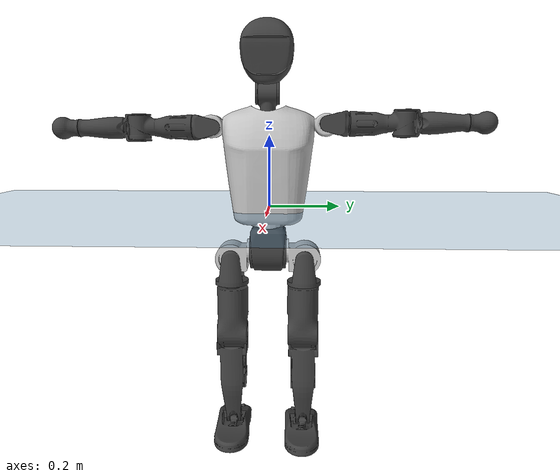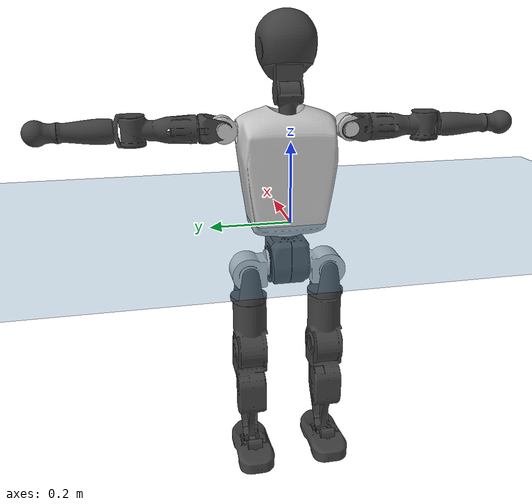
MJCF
<mujoco model="T1">
  <compiler angle="radian" assetdir="assets" balanceinertia="true" inertiafromgeom="false"/>

  <option timestep="0.005" density="1.2" viscosity="2e-05"/>

  <size nkey="1"/>

  <visual>
    <quality shadowsize="8192"/>
    <map shadowclip="0.5"/>
  </visual>

  <default>
    <default class="/">
      <joint armature="0.01" damping="0.01" frictionloss="0.1"/>
      <geom contype="0" conaffinity="0" group="1" solref="-1000 -80"/>
      <site size="0.01 0.005 0.005" group="5"/>
      <general forcelimited="true" biastype="affine" gainprm="25" biasprm="0 -25 -0.6"/>
      <default class="t1">
        <geom rgba="0.25 0.25 0.25 1"/>
        <default class="visual">
          <geom type="mesh" group="2"/>
        </default>
        <default class="collision">
          <geom group="3"/>
        </default>
        <default class="foot">
          <geom size="0.1115 0.05 0.015" type="box" condim="6" group="4" priority="1" solimp="0.015 1 0.015"/>
        </default>
        <default class="reward_collision_sphere">
          <geom group="5" rgba="1 0 0 1"/>
        </default>
      </default>
    </default>
  </default>

  <asset>
    <texture type="skybox" colorspace="auto" name="//unnamed_texture_0" builtin="gradient" rgb1="0.95 0.95 0.95" rgb2="0.95 0.95 0.95" width="100" height="600"/>
    <texture type="2d" colorspace="auto" name="texplane" builtin="checker" rgb1="0.345 0.575 0.748" rgb2="0.345 0.575 0.748" markrgb="1 1 1" width="512" height="512"/>
    <material name="MatPlane" class="/" texture="texplane" texuniform="true" texrepeat="2 2" specular="0.9"/>
    <mesh name="Trunk" class="/" file="Trunk.stl"/>
    <mesh name="H1" class="/" file="H1.stl"/>
    <mesh name="H2" class="/" file="H2.stl"/>
    <mesh name="AL1" class="/" file="AL1.stl"/>
    <mesh name="AL2" class="/" file="AL2.stl"/>
    <mesh name="AL3" class="/" file="AL3.stl"/>
    <mesh name="left_hand_link" class="/" file="left_hand_link.stl"/>
    <mesh name="AR1" class="/" file="AR1.stl"/>
    <mesh name="AR2" class="/" file="AR2.stl"/>
    <mesh name="AR3" class="/" file="AR3.stl"/>
    <mesh name="right_hand_link" class="/" file="right_hand_link.stl"/>
    <mesh name="Waist" class="/" file="Waist.stl"/>
    <mesh name="Hip_Pitch_Left" class="/" file="Hip_Pitch_Left.stl"/>
    <mesh name="Hip_Roll_Left" class="/" file="Hip_Roll_Left.stl"/>
    <mesh name="Hip_Yaw_Left" class="/" file="Hip_Yaw_Left.stl"/>
    <mesh name="Shank_Left" class="/" file="Shank_Left.stl"/>
    <mesh name="Ankle_Cross_Left" class="/" file="Ankle_Cross_Left.stl"/>
    <mesh name="left_foot_link" class="/" file="left_foot_link.stl"/>
    <mesh name="Hip_Pitch_Right" class="/" file="Hip_Pitch_Right.stl"/>
    <mesh name="Hip_Roll_Right" class="/" file="Hip_Roll_Right.stl"/>
    <mesh name="Hip_Yaw_Right" class="/" file="Hip_Yaw_Right.stl"/>
    <mesh name="Shank_Right" class="/" file="Shank_Right.stl"/>
    <mesh name="Ankle_Cross_Right" class="/" file="Ankle_Cross_Right.stl"/>
    <mesh name="right_foot_link" class="/" file="right_foot_link.stl"/>
  </asset>

  <worldbody>
    <geom name="floor" class="/" size="100 100 0.125" type="plane" group="0" material="MatPlane"/>
    <light name="toplight_shadow" class="/" pos="0 0 5" dir="0.0990148 0.0990148 -0.990148" type="directional" ambient="0.04 0.04 0.04" diffuse="0.55 0.55 0.55" specular="0.12 0.12 0.12"/>
    <light name="toplight_fill" class="/" pos="0 0 5" dir="0.0990148 0.0990148 -0.990148" type="directional" castshadow="false" ambient="0.04 0.04 0.04" diffuse="0.3 0.3 0.3" specular="0.08 0.08 0.08"/>
    <body name="trunk" childclass="t1" pos="0.0026964 0.000259683 -0.00029695" quat="1 6.27298e-05 -0.000283561 -0.000202471">
      <inertial pos="0.0381125 -0.000759879 0.106359" quat="0.999967 -0.0010181 -0.00732066 0.00348396" mass="9.10345" diaginertia="0.0157429 0.0729068 0.0650788"/>
      <joint name="//unnamed_joint_0" type="free" armature="0" damping="0" frictionloss="0"/>
      <geom name="//unnamed_geom_1" class="visual" rgba="0.76 0.76 0.76 1" mesh="Trunk"/>
      <geom name="//unnamed_geom_2" class="collision" size="0.0679999 0.0906665 0.136" pos="0.0419241 0 0.12378" type="box"/>
      <geom name="//unnamed_geom_3" class="reward_collision_sphere" size="0.104267" pos="0.0419241 0 0.10315"/>
      <geom name="//unnamed_geom_4" class="reward_collision_sphere" size="0.0136" pos="0.0419241 0.0841293 0"/>
      <geom name="//unnamed_geom_5" class="reward_collision_sphere" size="0.0136" pos="0.0419241 -0.0841293 0"/>
      <geom name="//unnamed_geom_6" class="reward_collision_sphere" size="0.0136" pos="0.0419241 0.105904 0.185671"/>
      <geom name="//unnamed_geom_7" class="reward_collision_sphere" size="0.0136" pos="0.0419241 -0.105904 0.185671"/>
      <site name="imu" pos="-0.0115725 -0.00803067 0.0140355" size="0.00906665"/>
      <camera name="track" pos="0 -1.97951 0" quat="0.707107 0.707107 0 0" mode="trackcom"/>
      <camera name="ego_camera" pos="0.0852457 0 0.433231" quat="-0.5 -0.5 0.5 0.5"/>
      <body name="H1" pos="0.0417304 -0.00240166 0.248717" quat="1 1.38365e-05 -6.80898e-05 3.52289e-05">
        <inertial pos="-0.0035044 -0.00201378 0.0572103" quat="0.761149 -0.0208565 0.00893482 0.64818" mass="0.341493" diaginertia="3.99799e-05 0.000206379 0.00017366"/>
        <joint name="AAHead_yaw" pos="0 0 0" axis="0.0122205 0.00332516 0.99992" range="-1.56244 1.58565" armature="0.0101132" damping="0.00718014" frictionloss="0.101125"/>
        <geom name="//unnamed_geom_8" class="visual" mesh="H1"/>
        <body name="H2" pos="-0.000297841 -0.000269561 0.0635561" quat="0.999999 -0.000338619 0.00130025 -0.000360907">
          <inertial pos="0.00403288 -0.000872769 0.101497" quat="0.988536 0.105231 -0.0762038 -0.0769103" mass="0.484827" diaginertia="0.000332017 0.00183046 0.00205938"/>
          <joint name="Head_pitch" pos="0 0 0" axis="9.29873e-06 -1 0.000365925" range="-1.21978 0.352684" armature="0.0101991" damping="0.00464898" frictionloss="0.0892778"/>
          <geom name="//unnamed_geom_9" class="visual" mesh="H2"/>
          <geom name="//unnamed_geom_10" class="collision" size="0.0725332" pos="0.00698736 0 0.113465"/>
          <geom name="//unnamed_geom_11" class="reward_collision_sphere" size="0.0815999" pos="0.0139747 0 0.10315"/>
        </body>
      </body>
      <body name="AL1" pos="0.0434372 0.108023 0.228726" quat="1 4.58235e-05 0.000518965 -0.000125624">
        <inertial pos="-0.00240559 0.0468012 -0.00278495" quat="0.504153 0.495743 -0.504293 0.495739" mass="0.416871" diaginertia="0.000241625 0.0013017 0.000351211"/>
        <joint name="Left_Shoulder_Pitch" pos="0 0 0" axis="0.0082736 0.999914 -0.0101273" stiffness="0.013995" range="-3.27038 1.21935" armature="0.0102091" damping="0.0117202" frictionloss="0.0781357"/>
        <geom name="//unnamed_geom_12" class="visual" rgba="0.76 0.76 0.76 1" mesh="AL1"/>
        <body name="AL2" pos="-3.75403e-05 0.0498477 0.00295937" quat="1 0.000453492 0.000658394 -0.000214716">
          <inertial pos="0.00232559 0.0375257 0.00208135" quat="0.48834 0.51178 -0.487583 0.51173" mass="0.118525" diaginertia="7.12249e-05 0.000346014 0.000205634"/>
          <joint name="Left_Shoulder_Roll" pos="0 0 0" axis="-0.999994 0.000493601 -0.003557" range="-1.51831 1.6856" armature="0.0089159" damping="0.0161237" frictionloss="0.095472"/>
          <geom name="//unnamed_geom_13" class="visual" mesh="AL2"/>
          <body name="AL3" pos="0.00273959 0.0602573 -0.000525464" quat="0.999999 0.000726357 -0.000955117 0.000828014">
            <inertial pos="-0.000802352 0.0841139 0.00273504" quat="0.707958 0.706119 -0.013836 0.000163091" mass="0.770682" diaginertia="0.0022239 0.0121394 0.00072796"/>
            <joint name="Left_Elbow_Pitch" pos="0 0 0" axis="-0.00587008 -0.999983 0.000399449" range="-2.25244 2.3229" armature="0.00779378" damping="0" frictionloss="0.0900637"/>
            <geom name="//unnamed_geom_14" class="visual" mesh="AL3"/>
            <geom name="//unnamed_geom_15" class="collision" size="0.0272 0.0679999" pos="0 0.0494879 0" quat="0.707105 0.707108 0 0" type="cylinder"/>
            <geom name="//unnamed_geom_16" class="reward_collision_sphere" size="0.03264"/>
            <body name="left_hand_link" pos="0.0022556 0.145983 0.00105161" quat="0.999999 0.00133263 0.000461459 7.38492e-05">
              <inertial pos="0.00158384 0.105834 0.00144642" quat="0.709927 0.704261 0.000873952 0.00437236" mass="0.238747" diaginertia="0.00138499 0.00782074 0.000246436"/>
              <joint name="Left_Elbow_Yaw" pos="0 0 0" axis="0.00907184 0.0019628 0.999957" stiffness="0.003116" range="-2.39751 -0.0510956" armature="0.0104242" damping="0.0265537" frictionloss="0.103383"/>
              <geom name="//unnamed_geom_17" class="visual" mesh="left_hand_link"/>
              <geom name="//unnamed_geom_18" class="collision" size="0.0272 0.0793332" pos="0 0.128668 0" quat="0.707105 0.707108 0 0" type="cylinder"/>
              <geom name="//unnamed_geom_19" class="reward_collision_sphere" size="0.0453333"/>
              <geom name="//unnamed_geom_20" class="reward_collision_sphere" size="0.0317333" pos="0 0.108873 0"/>
              <geom name="//unnamed_geom_21" class="reward_collision_sphere" size="0.0317333" pos="0 0.212798 0"/>
            </body>
          </body>
        </body>
      </body>
      <body name="AR1" pos="0.0396194 -0.107071 0.224849" quat="0.999999 0.000919509 0.000785819 0.000802368">
        <inertial pos="0.00108247 -0.044261 -0.000234583" quat="0.50424 0.496355 -0.503374 0.495973" mass="0.399674" diaginertia="0.000224872 0.00122043 0.000343132"/>
        <joint name="Right_Shoulder_Pitch" pos="0 0 0" axis="0.00297593 -0.999988 -0.00399346" stiffness="0.0148303" range="-1.23949 3.32116" armature="0.0101849" damping="0.000334896" frictionloss="0.079579"/>
        <geom name="//unnamed_geom_22" class="visual" rgba="0.76 0.76 0.76 1" mesh="AR1"/>
        <body name="AR2" pos="-8.62341e-05 -0.0435451 -0.00263612" quat="1 0.000483867 -0.000218259 -0.000267446">
          <inertial pos="0.000111113 -0.0347642 -0.00213617" quat="0.512248 0.484 -0.514703 0.488289" mass="0.12393" diaginertia="6.89409e-05 0.000330095 0.000217348"/>
          <joint name="Right_Shoulder_Roll" pos="0 0 0" axis="-0.999762 -0.00538369 0.0211441" range="-1.70113 1.59048" armature="0.00979928" damping="0.019161" frictionloss="0.0925865"/>
          <geom name="//unnamed_geom_23" class="visual" mesh="AR2"/>
          <body name="AR3" pos="0.000767229 -0.0575269 0.000615594" quat="1 0.000265203 6.46145e-05 0.000209897">
            <inertial pos="-0.00267203 -0.0835503 -7.8899e-05" quat="0.700148 0.713989 -0.00307825 0.00158649" mass="0.76272" diaginertia="0.00216969 0.0122305 0.00074801"/>
            <joint name="Right_Elbow_Pitch" pos="0 0 0" axis="-0.00368403 0.999946 -0.00974006" range="-2.26923 2.21384" armature="0.00889492" damping="0.00720486" frictionloss="0.0799002"/>
            <geom name="//unnamed_geom_24" class="visual" mesh="AR3"/>
            <geom name="//unnamed_geom_25" class="collision" size="0.0272 0.0679999" pos="0 -0.0494879 0" quat="0.707105 0.707108 0 0" type="cylinder"/>
            <geom name="//unnamed_geom_26" class="reward_collision_sphere" size="0.03264"/>
            <body name="right_hand_link" pos="0.00154581 -0.142971 -0.000832738" quat="1 0.000126104 -2.04003e-05 -5.85158e-05">
              <inertial pos="-0.000738544 -0.107659 0.00341292" quat="0.7065 0.707712 7.07949e-05 0.000432074" mass="0.245716" diaginertia="0.00136998 0.0075669 0.000248528"/>
              <joint name="Right_Elbow_Yaw" pos="0 0 0" axis="0.000155945 0.000509992 1" stiffness="0.0111133" range="0.0508301 2.42074" armature="0.0091035" damping="0" frictionloss="0.0791539"/>
              <geom name="//unnamed_geom_27" class="visual" mesh="right_hand_link"/>
              <geom name="//unnamed_geom_28" class="collision" size="0.0272 0.0793332" pos="0 -0.128668 0" quat="0.707105 0.707108 0 0" type="cylinder"/>
              <geom name="//unnamed_geom_29" class="reward_collision_sphere" size="0.0453333"/>
              <geom name="//unnamed_geom_30" class="reward_collision_sphere" size="0.0317333" pos="0 -0.108873 0"/>
              <geom name="//unnamed_geom_31" class="reward_collision_sphere" size="0.0317333" pos="0 -0.212798 0"/>
            </body>
          </body>
        </body>
      </body>
      <body name="Waist" pos="0.0431273 -0.00147365 -0.118556" quat="1 -0.000200481 0.000164392 -0.000339523">
        <inertial pos="0.00240266 -0.000564048 0.00801477" quat="0.984052 0.00784055 -0.177327 0.0116329" mass="1.86922" diaginertia="0.000920111 0.00504338 0.00569625"/>
        <joint name="Waist" pos="0 0 0" axis="-0.0099847 0.0122492 0.999875" stiffness="0.00300617" range="-1.61974 1.51947" armature="0.0092932" damping="0.0141927" frictionloss="0.0791118"/>
        <geom name="//unnamed_geom_32" class="visual" mesh="Waist"/>
        <body name="Hip_Pitch_Left" pos="-7.5391e-05 0.103957 -0.00100145" quat="1 0.000347805 -4.496e-05 8.53781e-05">
          <inertial pos="0.00152274 -0.010315 -0.017977" quat="0.973783 0.226872 0.0151698 -0.00677574" mass="0.769055" diaginertia="0.000294196 0.00144914 0.00152334"/>
          <joint name="Left_Hip_Pitch" pos="0 0 0" axis="-0.00678739 0.999942 -0.00831528" stiffness="0.0102497" range="-1.81705 1.56885" armature="0.010175" damping="0.0224019" frictionloss="0.0899768"/>
          <geom name="//unnamed_geom_33" class="visual" rgba="0.76 0.76 0.76 1" mesh="Hip_Pitch_Left"/>
          <body name="Hip_Roll_Left" pos="0.00253599 -0.00178865 -0.0217943" quat="0.999999 0.001176 0.000154612 -0.000748217">
            <inertial pos="0.00406082 -0.000505123 -0.0551495" quat="0.707929 -0.00543075 -0.00558055 0.70624" mass="0.26959" diaginertia="0.000276016 0.0013988 0.000579011"/>
            <joint name="Left_Hip_Roll" pos="0 0 0" axis="-0.999903 -0.00769123 0.0115757" stiffness="0.00267799" range="-1.52088 0.226389" armature="0.0079702" damping="0" frictionloss="0.0841383"/>
            <geom name="//unnamed_geom_34" class="visual" mesh="Hip_Roll_Left"/>
            <geom name="//unnamed_geom_35" class="reward_collision_sphere" size="0.0498666"/>
            <body name="Hip_Yaw_Left" pos="0.0029197 -0.00280193 -0.0827695" quat="0.999999 -0.000116631 -0.00100823 -0.00086948">
              <inertial pos="-0.00698086 -0.000904415 -0.0929523" quat="0.69682 -0.0339295 -0.0316154 0.715745" mass="1.63604" diaginertia="0.00445716 0.0242442 0.00302681"/>
              <joint name="Left_Hip_Yaw" pos="0 0 0" axis="-0.000433886 0.0058309 -0.999983" range="-0.962583 1.06167" armature="0.00905267" damping="0.00578029" frictionloss="0.103263"/>
              <geom name="//unnamed_geom_36" class="visual" mesh="Hip_Yaw_Left"/>
              <geom name="//unnamed_geom_37" class="collision" size="0.0453333 0.0725332" type="cylinder"/>
              <body name="Shank_Left" pos="-0.00997376 0.00231844 -0.140087" quat="1 0.000159142 -3.30866e-05 -3.34047e-05">
                <inertial pos="-0.00629498 0.000977231 -0.127639" quat="0.997917 -0.00461266 -0.0165071 0.0621897" mass="1.2477" diaginertia="0.00577939 0.0334699 0.00224285"/>
                <joint name="Left_Knee_Pitch" pos="0 0 0" axis="0.00771751 0.999909 -0.011063" range="0.00933882 2.39776" armature="0.00777433" damping="0.0112452" frictionloss="0.101067"/>
                <geom name="//unnamed_geom_38" class="visual" mesh="Shank_Left"/>
                <geom name="//unnamed_geom_39" class="collision" size="0.0453333 0.0679999" pos="0 0 -0.12378" type="cylinder"/>
                <geom name="//unnamed_geom_40" class="reward_collision_sphere" size="0.0589332"/>
                <body name="Ankle_Cross_Left" pos="-0.00235849 -0.00106598 -0.288063" quat="1 0.00015271 0.00031048 0.000352125">
                  <inertial pos="-0.00197945 -0.00028308 -0.00722218" quat="0.438796 0.553257 0.552995 0.442223" mass="0.0559211" diaginertia="5.08809e-06 2.50578e-05 1.35391e-05"/>
                  <joint name="Left_Ankle_Pitch" pos="0 0 0" axis="-0.0119646 0.999922 0.00371668" range="-0.864089 0.29479" armature="0.0100584" damping="0.00562329" frictionloss="0.0823834"/>
                  <geom name="//unnamed_geom_41" class="visual" mesh="Ankle_Cross_Left"/>
                  <body name="left_foot_link" pos="0.00162836 -0.00203566 -0.0145864" quat="1 2.64519e-05 -4.52499e-05 -0.000133413">
                    <inertial pos="-0.00228771 0.00269251 -0.00925585" quat="-0.0039915 0.622192 0.00230419 0.782851" mass="0.50773" diaginertia="0.000444616 0.00223307 0.00243403"/>
                    <joint name="Left_Ankle_Roll" pos="0 0 0" axis="-0.999995 0.00240495 0.00207859" range="-0.391226 0.40075" armature="0.00905468" damping="0.00507623" frictionloss="0.0950467"/>
                    <geom name="//unnamed_geom_42" class="visual" mesh="left_foot_link"/>
                    <geom name="left_foot" class="foot" size="0.0995318 0.0449635 0.0127868" pos="0.00698736 0 -0.0154726"/>
                    <geom name="//unnamed_geom_44" class="reward_collision_sphere" size="0.0471466" pos="0.00698736 0 -0.0154726"/>
                    <geom name="//unnamed_geom_45" class="reward_collision_sphere" size="0.0272" pos="0.0663799 -0.0227644 -0.0154726"/>
                    <geom name="//unnamed_geom_46" class="reward_collision_sphere" size="0.0272" pos="-0.0489115 -0.0227644 -0.0154726"/>
                    <site name="left_foot" class="foot" pos="0.00698736 0 -0.0154726" size="0.00906665"/>
                  </body>
                </body>
              </body>
            </body>
          </body>
        </body>
        <body name="Hip_Pitch_Right" pos="-0.00179947 -0.105002 -0.0024854" quat="1 0.000329782 -0.000359031 -0.000503215">
          <inertial pos="0.00127568 0.00750832 -0.0213245" quat="0.973133 -0.229644 0.0163021 -0.0032025" mass="0.750046" diaginertia="0.000292174 0.00143106 0.00149231"/>
          <joint name="Right_Hip_Pitch" pos="0 0 0" axis="0.00631728 -0.999975 0.00330294" range="-1.60157 1.84487" armature="0.00858421" damping="0.021753" frictionloss="0.0798256"/>
          <geom name="//unnamed_geom_47" class="visual" rgba="0.76 0.76 0.76 1" mesh="Hip_Pitch_Right"/>
          <body name="Hip_Roll_Right" pos="0.00217749 -0.000227251 -0.0200423" quat="1 -2.1315e-05 0.000228112 -0.000162125">
            <inertial pos="0.000639209 -0.00334485 -0.0526223" quat="0.708459 -0.00730514 -0.00679292 0.705681" mass="0.277202" diaginertia="0.000279816 0.00136514 0.000598199"/>
            <joint name="Right_Hip_Roll" pos="0 0 0" axis="-0.999931 0.00836633 0.00827676" range="-0.196117 1.57294" armature="0.00774595" damping="0.00291026" frictionloss="0.0880945"/>
            <geom name="//unnamed_geom_48" class="visual" mesh="Hip_Roll_Right"/>
            <geom name="//unnamed_geom_49" class="reward_collision_sphere" size="0.0498666"/>
            <body name="Hip_Yaw_Right" pos="-1.09767e-05 0.00136786 -0.0874488" quat="1 0.000623875 0.000632036 0.000312324">
              <inertial pos="-0.00239778 0.00196937 -0.0947654" quat="0.717633 -0.0303088 -0.0409641 0.694555" mass="1.62066" diaginertia="0.00432985 0.0235147 0.00300713"/>
              <joint name="Right_Hip_Yaw" pos="0 0 0" axis="-0.00436331 -0.000910721 -0.99999" range="-1.01685 1.00701" armature="0.00948697" damping="0.00889299" frictionloss="0.0909077"/>
              <geom name="//unnamed_geom_50" class="visual" mesh="Hip_Yaw_Right"/>
              <geom name="//unnamed_geom_51" class="collision" size="0.0453333 0.0725332" type="cylinder"/>
              <body name="Shank_Right" pos="-0.00706297 -0.00218055 -0.135622" quat="1 3.06768e-05 -0.000197055 0.000178108">
                <inertial pos="-0.00599545 0.000958904 -0.128686" quat="0.999172 0.0097347 -0.0158886 -0.03618" mass="1.3659" diaginertia="0.00559587 0.0317008 0.00221521"/>
                <joint name="Right_Knee_Pitch" pos="0 0 0" axis="0.0106511 -0.999911 0.00807822" range="-2.38803 -0.00680713" armature="0.00922874" damping="0.0111287" frictionloss="0.0823852"/>
                <geom name="//unnamed_geom_52" class="visual" mesh="Shank_Right"/>
                <geom name="//unnamed_geom_53" class="collision" size="0.0453333 0.0679999" pos="0 0 -0.12378" type="cylinder"/>
                <geom name="//unnamed_geom_54" class="reward_collision_sphere" size="0.0589332"/>
                <body name="Ankle_Cross_Right" pos="-0.00050332 -0.00119498 -0.287026" quat="1 0.000258106 -0.000222757 -0.00015808">
                  <inertial pos="-0.00287393 -0.00276055 -0.00798161" quat="0.447733 0.55685 0.547767 0.435206" mass="0.0540694" diaginertia="4.81101e-06 2.29927e-05 1.28526e-05"/>
                  <joint name="Right_Ankle_Pitch" pos="0 0 0" axis="-0.00173183 -0.999922 0.0123439" range="-0.30726 0.870597" armature="0.0103397" damping="0.000925691" frictionloss="0.0911509"/>
                  <geom name="//unnamed_geom_55" class="visual" mesh="Ankle_Cross_Right"/>
                  <body name="right_foot_link" pos="0.00128691 -0.00120434 -0.00960946" quat="1 9.87632e-07 1.74555e-06 8.31588e-07">
                    <inertial pos="0.000100214 0.00100654 -0.0068023" quat="-0.00584506 0.618816 -0.0110142 0.785437" mass="0.514452" diaginertia="0.0004657 0.00229345 0.00257557"/>
                    <joint name="Right_Ankle_Roll" pos="0 0 0" axis="-0.999998 -0.00143287 -0.00102067" range="-0.436974 0.386887" armature="0.00932191" damping="0.0144625" frictionloss="0.0783678"/>
                    <geom name="//unnamed_geom_56" class="visual" mesh="right_foot_link"/>
                    <geom name="right_foot" class="foot" size="0.111578 0.0466305 0.0145022" pos="0.00698736 0 -0.0154726"/>
                    <geom name="//unnamed_geom_58" class="reward_collision_sphere" size="0.0362666"/>
                    <geom name="//unnamed_geom_59" class="reward_collision_sphere" size="0.0272" pos="0.00698736 0 -0.0154726"/>
                    <geom name="//unnamed_geom_60" class="reward_collision_sphere" size="0.0272" pos="0.0663799 0.0227644 -0.0154726"/>
                    <geom name="//unnamed_geom_61" class="reward_collision_sphere" size="0.0272" pos="-0.0489115 0.0227644 -0.0154726"/>
                    <site name="right_foot" class="foot" pos="0.00698736 0 -0.0154726" size="0.00906665"/>
                  </body>
                </body>
              </body>
            </body>
          </body>
        </body>
      </body>
    </body>
  </worldbody>

  <contact>
    <pair class="/" geom1="floor" geom2="left_foot" name="//unnamed_contact_0"/>
    <pair class="/" geom1="floor" geom2="right_foot" name="//unnamed_contact_1"/>
  </contact>

  <actuator>
    <general name="AAHead_yaw" class="/" joint="AAHead_yaw" forcerange="-7.00649 7.00649" gainprm="23.751" biasprm="0 -23.751 -0.496614"/>
    <general name="Head_pitch" class="/" joint="Head_pitch" forcerange="-6.21379 6.21379" gainprm="23.751" biasprm="0 -23.751 -0.496614"/>
    <general name="Left_Shoulder_Pitch" class="/" joint="Left_Shoulder_Pitch" forcerange="-15.6344 15.6344" gainprm="23.751" biasprm="0 -23.751 -0.496614"/>
    <general name="Left_Shoulder_Roll" class="/" joint="Left_Shoulder_Roll" forcerange="-16.5918 16.5918" gainprm="23.751" biasprm="0 -23.751 -0.496614"/>
    <general name="Left_Elbow_Pitch" class="/" joint="Left_Elbow_Pitch" forcerange="-18.0667 18.0667" gainprm="23.751" biasprm="0 -23.751 -0.496614"/>
    <general name="Left_Elbow_Yaw" class="/" joint="Left_Elbow_Yaw" forcerange="-17.9021 17.9021" gainprm="23.751" biasprm="0 -23.751 -0.496614"/>
    <general name="Right_Shoulder_Pitch" class="/" joint="Right_Shoulder_Pitch" forcerange="-15.3922 15.3922" gainprm="23.751" biasprm="0 -23.751 -0.496614"/>
    <general name="Right_Shoulder_Roll" class="/" joint="Right_Shoulder_Roll" forcerange="-16.3707 16.3707" gainprm="23.751" biasprm="0 -23.751 -0.496614"/>
    <general name="Right_Elbow_Pitch" class="/" joint="Right_Elbow_Pitch" forcerange="-16.167 16.167" gainprm="23.751" biasprm="0 -23.751 -0.496614"/>
    <general name="Right_Elbow_Yaw" class="/" joint="Right_Elbow_Yaw" forcerange="-16.2041 16.2041" gainprm="23.751" biasprm="0 -23.751 -0.496614"/>
    <general name="Waist" class="/" joint="Waist" forcerange="-28.1119 28.1119" gainprm="23.751" biasprm="0 -23.751 -0.496614"/>
    <general name="Left_Hip_Pitch" class="/" joint="Left_Hip_Pitch" forcerange="-41.0608 41.0608" gainprm="23.751" biasprm="0 -23.751 -0.496614"/>
    <general name="Left_Hip_Roll" class="/" joint="Left_Hip_Roll" forcerange="-26.4545 26.4545" gainprm="23.751" biasprm="0 -23.751 -0.496614"/>
    <general name="Left_Hip_Yaw" class="/" joint="Left_Hip_Yaw" forcerange="-24.3698 24.3698" gainprm="23.751" biasprm="0 -23.751 -0.496614"/>
    <general name="Left_Knee_Pitch" class="/" joint="Left_Knee_Pitch" forcerange="-57.8905 57.8905" gainprm="23.751" biasprm="0 -23.751 -0.496614"/>
    <general name="Left_Ankle_Pitch" class="/" joint="Left_Ankle_Pitch" forcerange="-16.6584 16.6584" gainprm="23.751" biasprm="0 -23.751 -0.496614"/>
    <general name="Left_Ankle_Roll" class="/" joint="Left_Ankle_Roll" forcerange="-13.8177 13.8177" gainprm="23.751" biasprm="0 -23.751 -0.496614"/>
    <general name="Right_Hip_Pitch" class="/" joint="Right_Hip_Pitch" forcerange="-42.1534 42.1534" gainprm="23.751" biasprm="0 -23.751 -0.496614"/>
    <general name="Right_Hip_Roll" class="/" joint="Right_Hip_Roll" forcerange="-28.0283 28.0283" gainprm="23.751" biasprm="0 -23.751 -0.496614"/>
    <general name="Right_Hip_Yaw" class="/" joint="Right_Hip_Yaw" forcerange="-26.3732 26.3732" gainprm="23.751" biasprm="0 -23.751 -0.496614"/>
    <general name="Right_Knee_Pitch" class="/" joint="Right_Knee_Pitch" forcerange="-48.7036 48.7036" gainprm="23.751" biasprm="0 -23.751 -0.496614"/>
    <general name="Right_Ankle_Pitch" class="/" joint="Right_Ankle_Pitch" forcerange="-16.3552 16.3552" gainprm="23.751" biasprm="0 -23.751 -0.496614"/>
    <general name="Right_Ankle_Roll" class="/" joint="Right_Ankle_Roll" forcerange="-14.0001 14.0001" gainprm="23.751" biasprm="0 -23.751 -0.496614"/>
  </actuator>

  <sensor>
    <gyro site="imu" name="imu_angular_velocity"/>
    <velocimeter site="imu" name="imu_linear_velocity"/>
    <framelinvel objtype="site" objname="left_foot" name="left_foot_global_linear_velocity"/>
    <framelinvel objtype="site" objname="right_foot" name="right_foot_global_linear_velocity"/>
  </sensor>

  <keyframe>
    <key name="home" qpos="0 0 0.6385 1 0 0 0 0 0 0 1.4 0 -0.4 0 -1.4 0 0.4 0 -0.4 0 0 0.8 -0.4 0 0.4 0 0 -0.8 0.4 0"/>
  </keyframe>
</mujoco>
